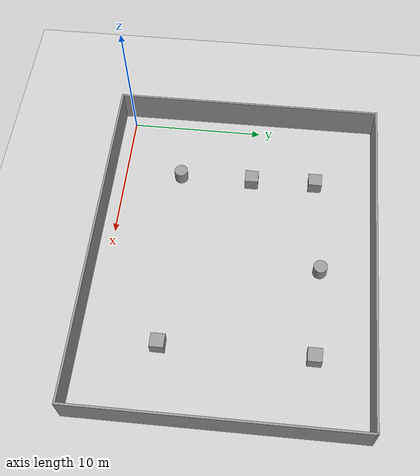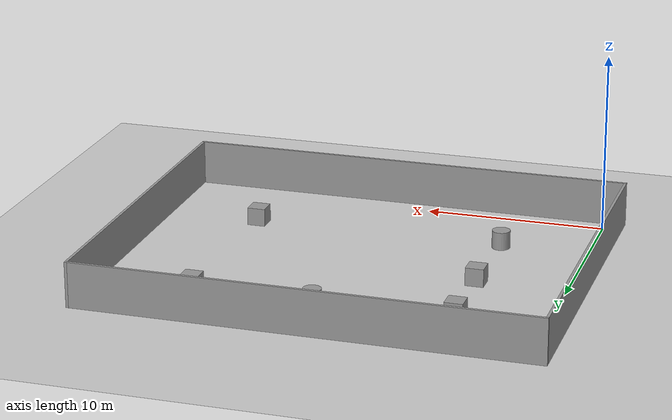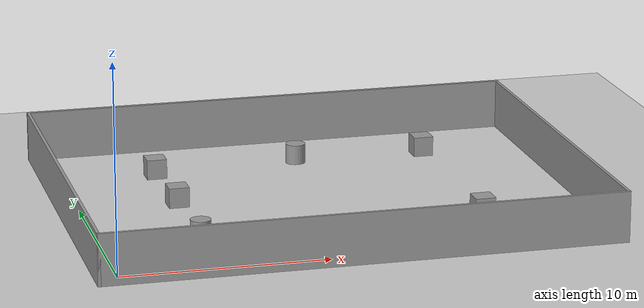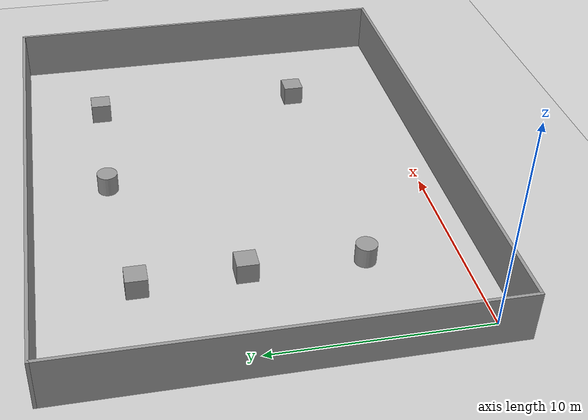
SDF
<sdf version="1.6">
 <world name="default">
  <light name="sun" type="directional">
   <pose>0 0 10 0 -0 0</pose>
   <diffuse>0.8 0.8 0.8 1</diffuse>
   <specular>0.2 0.2 0.2 1</specular>
   <attenuation>
    <range>1000</range>
    <constant>0.9</constant>
    <linear>0.01</linear>
    <quadratic>0.001</quadratic>
   </attenuation>
   <direction>-0.5 0.1 -0.9</direction>
  </light>
  <model name="ground_plane">
   <static>1</static>
   <link name="link">
    <collision name="collision">
     <geometry><plane><normal>0 0 1</normal><size>100 100</size></plane></geometry>
     <surface>
      <contact><collide_bitmask>65535</collide_bitmask></contact>
      <friction><ode><mu>100</mu><mu2>50</mu2></ode></friction>
     </surface>
    </collision>
    <visual name="visual">
     <cast_shadows>0</cast_shadows>
     <geometry><plane><normal>0 0 1</normal><size>100 100</size></plane></geometry>
     <material>
      <script><uri>file://media/materials/scripts/gazebo.material</uri><name>Gazebo/Grey</name></script>
     </material>
    </visual>
   </link>
  </model>
  <gravity>0 0 -9.8</gravity>
  <magnetic_field>6e-06 2.3e-05 -4.2e-05</magnetic_field>
  <atmosphere type="adiabatic"/>
  <physics name="default_physics" default="0" type="ode">
   <max_step_size>0.001</max_step_size>
   <real_time_factor>1</real_time_factor>
   <real_time_update_rate>1000</real_time_update_rate>
  </physics>
  <scene><ambient>0.4 0.4 0.4 1</ambient><background>0.7 0.7 0.7 1</background><shadows>1</shadows></scene>
  <audio><device>default</device></audio>
  <spherical_coordinates>
   <surface_model>EARTH_WGS84</surface_model>
   <latitude_deg>0</latitude_deg>
   <longitude_deg>0</longitude_deg>
   <elevation>0</elevation>
   <heading_deg>0</heading_deg>
  </spherical_coordinates>
  <model name="sanal_fabrika">
   <pose>11.5 9 0 0 -0 0</pose>
   <link name="Wall_10">
    <collision name="Wall_10_Collision">
     <geometry><box><size>25.15 0.15 2.5</size></box></geometry>
     <pose>0 0 1.25 0 -0 0</pose>
    </collision>
    <visual name="Wall_10_Visual">
     <pose>0 0 1.25 0 -0 0</pose>
     <geometry><box><size>25.15 0.15 2.5</size></box></geometry>
     <material>
      <script><uri>file://media/materials/scripts/gazebo.material</uri><name>Gazebo/Grey</name></script>
      <ambient>1 1 1 1</ambient>
     </material>
     <meta><layer>0</layer></meta>
    </visual>
    <pose>0 -10 0 0 -0 0</pose>
   </link>
   <link name="Wall_11">
    <collision name="Wall_11_Collision">
     <geometry><box><size>20.15 0.15 2.5</size></box></geometry>
     <pose>0 0 1.25 0 -0 0</pose>
    </collision>
    <visual name="Wall_11_Visual">
     <pose>0 0 1.25 0 -0 0</pose>
     <geometry><box><size>20.15 0.15 2.5</size></box></geometry>
     <material>
      <script><uri>file://media/materials/scripts/gazebo.material</uri><name>Gazebo/Grey</name></script>
      <ambient>1 1 1 1</ambient>
     </material>
     <meta><layer>0</layer></meta>
    </visual>
    <pose>12.5 0 0 0 -0 1.5708</pose>
   </link>
   <link name="Wall_12">
    <collision name="Wall_12_Collision">
     <geometry><box><size>25.15 0.15 2.5</size></box></geometry>
     <pose>0 0 1.25 0 -0 0</pose>
    </collision>
    <visual name="Wall_12_Visual">
     <pose>0 0 1.25 0 -0 0</pose>
     <geometry><box><size>25.15 0.15 2.5</size></box></geometry>
     <material>
      <script><uri>file://media/materials/scripts/gazebo.material</uri><name>Gazebo/Grey</name></script>
      <ambient>1 1 1 1</ambient>
     </material>
     <meta><layer>0</layer></meta>
    </visual>
    <pose>0 10 0 0 -0 3.14159</pose>
   </link>
   <link name="Wall_9">
    <collision name="Wall_9_Collision">
     <geometry><box><size>20.15 0.15 2.5</size></box></geometry>
     <pose>0 0 1.25 0 -0 0</pose>
    </collision>
    <visual name="Wall_9_Visual">
     <pose>0 0 1.25 0 -0 0</pose>
     <geometry><box><size>20.15 0.15 2.5</size></box></geometry>
     <material>
      <script><uri>file://media/materials/scripts/gazebo.material</uri><name>Gazebo/Grey</name></script>
      <ambient>1 1 1 1</ambient>
     </material>
     <meta><layer>0</layer></meta>
    </visual>
    <pose>-12.5 0 0 0 -0 -1.5708</pose>
   </link>
   <static>1</static>
  </model>
  <model name="unit_box">
   <pose>4.65904 14.6002 0.499995 -1e-05 -0 -0</pose>
   <link name="link">
    <inertial>
     <mass>1</mass>
     <inertia>
      <ixx>0.166667</ixx>
      <ixy>0</ixy>
      <ixz>0</ixz>
      <iyy>0.166667</iyy>
      <iyz>0</iyz>
      <izz>0.166667</izz>
     </inertia>
    </inertial>
    <collision name="collision"><geometry><box><size>1 1 1</size></box></geometry></collision>
    <visual name="visual">
     <geometry><box><size>1 1 1</size></box></geometry>
     <material>
      <script><name>Gazebo/Grey</name><uri>file://media/materials/scripts/gazebo.material</uri></script>
     </material>
    </visual>
   </link>
  </model>
  <model name="unit_cylinder">
   <pose>4.77919 4.32256 0.499993 -3e-06 -3e-06 -0</pose>
   <link name="link">
    <inertial>
     <mass>1</mass>
     <inertia><ixx>0.145833</ixx><ixy>0</ixy><ixz>0</ixz><iyy>0.145833</iyy><iyz>0</iyz><izz>0.125</izz></inertia>
    </inertial>
    <collision name="collision">
     <geometry><cylinder><radius>0.5</radius><length>1</length></cylinder></geometry>
    </collision>
    <visual name="visual">
     <geometry><cylinder><radius>0.5</radius><length>1</length></cylinder></geometry>
     <material>
      <script><name>Gazebo/Grey</name><uri>file://media/materials/scripts/gazebo.material</uri></script>
     </material>
    </visual>
   </link>
  </model>
  <model name="unit_box_0">
   <pose>18.6746 4.52952 0.499995 -1e-05 -0 -0</pose>
   <link name="link">
    <inertial>
     <mass>1</mass>
     <inertia>
      <ixx>0.166667</ixx>
      <ixy>0</ixy>
      <ixz>0</ixz>
      <iyy>0.166667</iyy>
      <iyz>0</iyz>
      <izz>0.166667</izz>
     </inertia>
    </inertial>
    <collision name="collision"><geometry><box><size>1 1 1</size></box></geometry></collision>
    <visual name="visual">
     <geometry><box><size>1 1 1</size></box></geometry>
     <material>
      <script><name>Gazebo/Grey</name><uri>file://media/materials/scripts/gazebo.material</uri></script>
     </material>
    </visual>
   </link>
  </model>
  <model name="unit_box_1">
   <pose>18.6989 15.1355 0.499995 0 1e-05 0</pose>
   <link name="link">
    <inertial>
     <mass>1</mass>
     <inertia>
      <ixx>0.166667</ixx>
      <ixy>0</ixy>
      <ixz>0</ixz>
      <iyy>0.166667</iyy>
      <iyz>0</iyz>
      <izz>0.166667</izz>
     </inertia>
    </inertial>
    <collision name="collision"><geometry><box><size>1 1 1</size></box></geometry></collision>
    <visual name="visual">
     <geometry><box><size>1 1 1</size></box></geometry>
     <material>
      <script><name>Gazebo/Grey</name><uri>file://media/materials/scripts/gazebo.material</uri></script>
     </material>
    </visual>
   </link>
  </model>
  <model name="unit_box_2">
   <pose>4.79281 9.76177 0.499995 -1e-05 -0 0</pose>
   <link name="link">
    <inertial>
     <mass>1</mass>
     <inertia>
      <ixx>0.166667</ixx>
      <ixy>0</ixy>
      <ixz>0</ixz>
      <iyy>0.166667</iyy>
      <iyz>0</iyz>
      <izz>0.166667</izz>
     </inertia>
    </inertial>
    <collision name="collision"><geometry><box><size>1 1 1</size></box></geometry></collision>
    <visual name="visual">
     <geometry><box><size>1 1 1</size></box></geometry>
     <material>
      <script><name>Gazebo/Grey</name><uri>file://media/materials/scripts/gazebo.material</uri></script>
     </material>
    </visual>
   </link>
  </model>
  <model name="unit_cylinder_0">
   <pose>12.0744 15.2616 0.499997 3e-06 4e-06 -0</pose>
   <link name="link">
    <inertial>
     <mass>1</mass>
     <inertia><ixx>0.145833</ixx><ixy>0</ixy><ixz>0</ixz><iyy>0.145833</iyy><iyz>0</iyz><izz>0.125</izz></inertia>
    </inertial>
    <collision name="collision">
     <geometry><cylinder><radius>0.5</radius><length>1</length></cylinder></geometry>
    </collision>
    <visual name="visual">
     <geometry><cylinder><radius>0.5</radius><length>1</length></cylinder></geometry>
     <material>
      <script><name>Gazebo/Grey</name><uri>file://media/materials/scripts/gazebo.material</uri></script>
     </material>
    </visual>
   </link>
  </model>
 </world>
</sdf>
